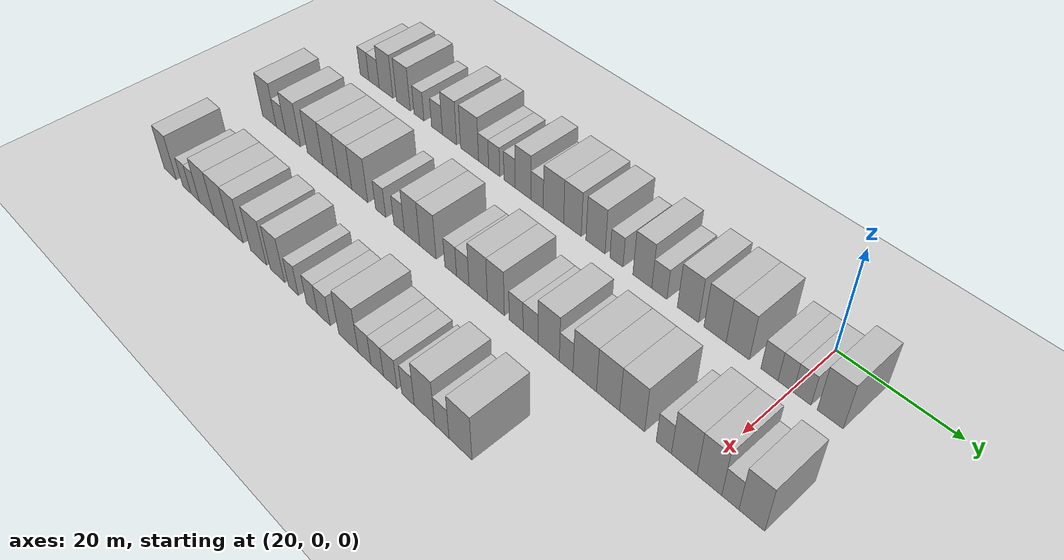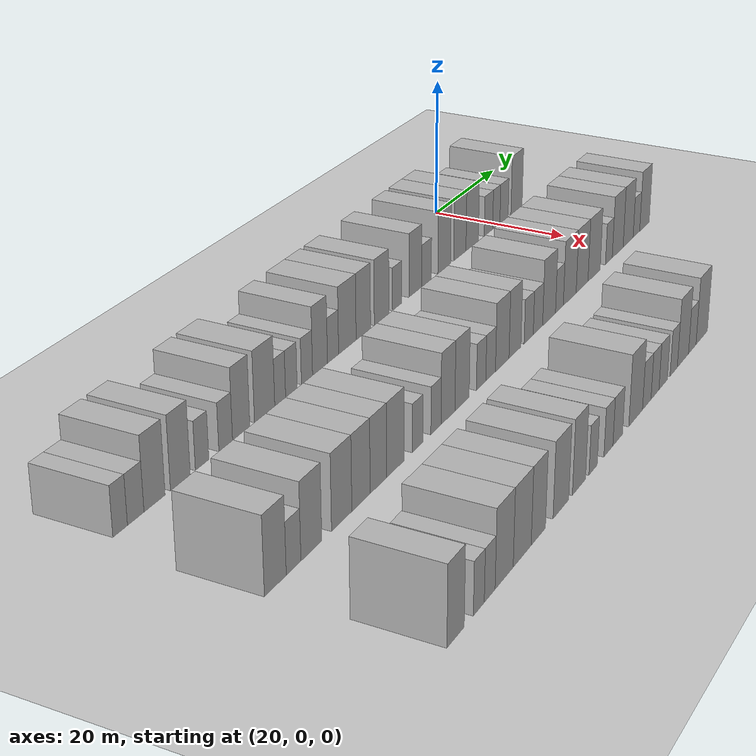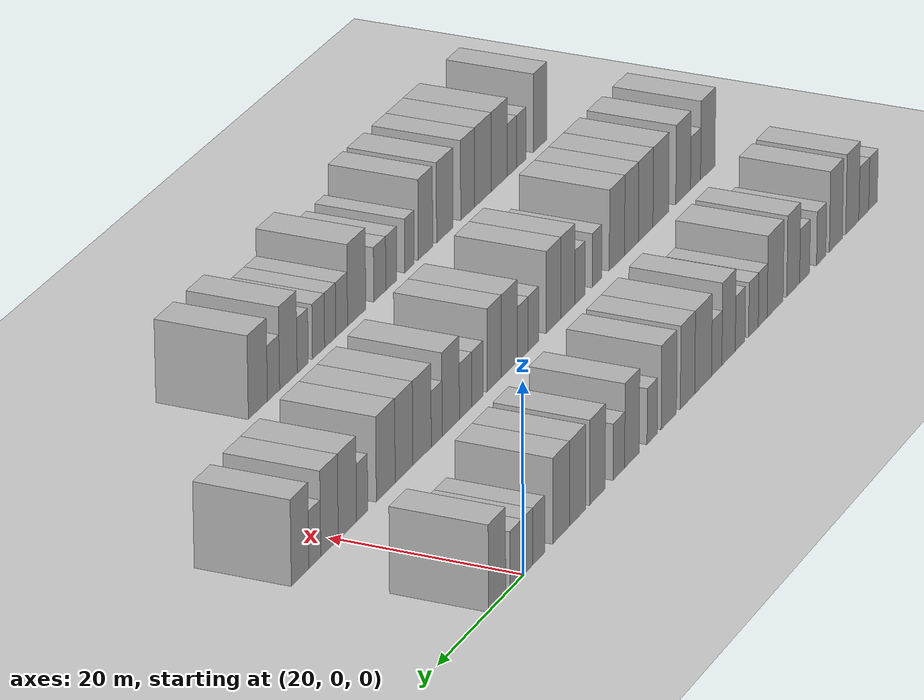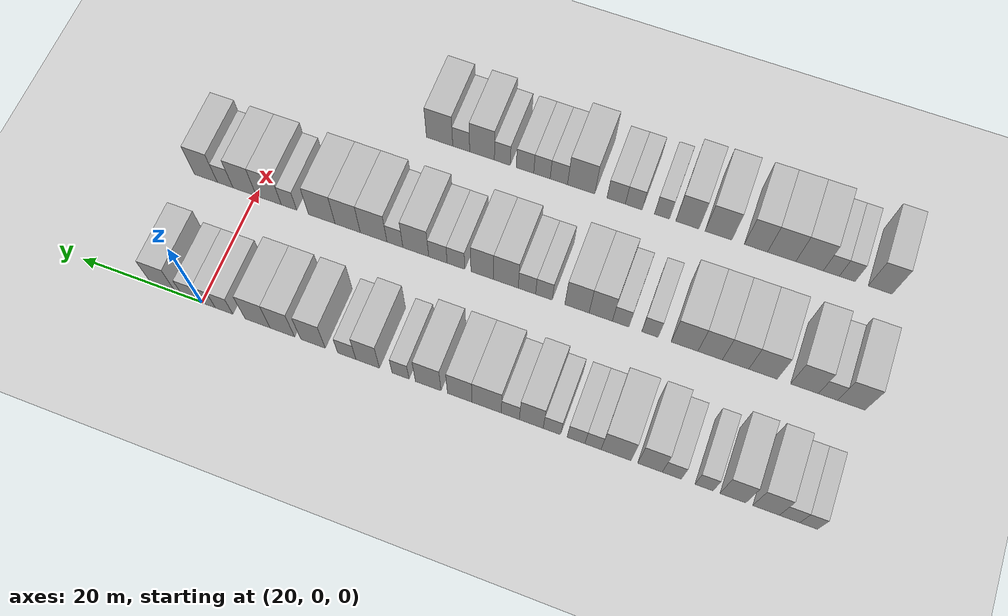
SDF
<sdf version="1.6">
 <world name="default">
  <include><name>ground_plane_1</name><uri>model://HANNAS_ground_plane</uri></include>
  <model name="building_67">
   <static>1</static>
   <pose>25.0000 -93.1399 0 0.000000 0.000000 0.000000</pose>
   <link name="link">
    <pose>0 0 3.00 0 0 0</pose>
    <collision name="collision"><geometry><box><size>10.0000 2.5217 6.0000</size></box></geometry></collision>
    <visual name="visual">
     <cast_shadows>0</cast_shadows>
     <geometry><box><size>10.0000 2.5217 6.0000</size></box></geometry>
     <material>
      <script>
       <uri>model://HANNAS_wall/materials/scripts</uri>
       <uri>model://HANNAS_wall/materials/textures</uri>
       <name>vrc/HANNAS_wall</name>
      </script>
     </material>
    </visual>
   </link>
  </model>
  <model name="building_68">
   <static>1</static>
   <pose>25.0000 -90.4197 0 0.000000 0.000000 0.000000</pose>
   <link name="link">
    <pose>0 0 3.00 0 0 0</pose>
    <collision name="collision"><geometry><box><size>10.0000 2.9186 6.0000</size></box></geometry></collision>
    <visual name="visual">
     <cast_shadows>0</cast_shadows>
     <geometry><box><size>10.0000 2.9186 6.0000</size></box></geometry>
     <material>
      <script>
       <uri>model://HANNAS_wall/materials/scripts</uri>
       <uri>model://HANNAS_wall/materials/textures</uri>
       <name>vrc/HANNAS_wall</name>
      </script>
     </material>
    </visual>
   </link>
  </model>
  <model name="building_69">
   <static>1</static>
   <pose>25.0000 -87.0418 0 0.000000 0.000000 0.000000</pose>
   <link name="link">
    <pose>0 0 4.50 0 0 0</pose>
    <collision name="collision"><geometry><box><size>10.0000 3.8372 9.0000</size></box></geometry></collision>
    <visual name="visual">
     <cast_shadows>0</cast_shadows>
     <geometry><box><size>10.0000 3.8372 9.0000</size></box></geometry>
     <material>
      <script>
       <uri>model://HANNAS_wall/materials/scripts</uri>
       <uri>model://HANNAS_wall/materials/textures</uri>
       <name>vrc/HANNAS_wall</name>
      </script>
     </material>
    </visual>
   </link>
  </model>
  <model name="building_70">
   <static>1</static>
   <pose>25.0000 -82.2463 0 0.000000 0.000000 0.000000</pose>
   <link name="link">
    <pose>0 0 4.50 0 0 0</pose>
    <collision name="collision"><geometry><box><size>10.0000 3.7538 9.0000</size></box></geometry></collision>
    <visual name="visual">
     <cast_shadows>0</cast_shadows>
     <geometry><box><size>10.0000 3.7538 9.0000</size></box></geometry>
     <material>
      <script>
       <uri>model://HANNAS_wall/materials/scripts</uri>
       <uri>model://HANNAS_wall/materials/textures</uri>
       <name>vrc/HANNAS_wall</name>
      </script>
     </material>
    </visual>
   </link>
  </model>
  <model name="building_71">
   <static>1</static>
   <pose>25.0000 -78.0394 0 0.000000 0.000000 0.000000</pose>
   <link name="link">
    <pose>0 0 3.00 0 0 0</pose>
    <collision name="collision"><geometry><box><size>10.0000 2.6600 6.0000</size></box></geometry></collision>
    <visual name="visual">
     <cast_shadows>0</cast_shadows>
     <geometry><box><size>10.0000 2.6600 6.0000</size></box></geometry>
     <material>
      <script>
       <uri>model://HANNAS_wall/materials/scripts</uri>
       <uri>model://HANNAS_wall/materials/textures</uri>
       <name>vrc/HANNAS_wall</name>
      </script>
     </material>
    </visual>
   </link>
  </model>
  <model name="building_72">
   <static>1</static>
   <pose>25.0000 -73.3021 0 0.000000 0.000000 0.000000</pose>
   <link name="link">
    <pose>0 0 3.00 0 0 0</pose>
    <collision name="collision"><geometry><box><size>10.0000 2.8146 6.0000</size></box></geometry></collision>
    <visual name="visual">
     <cast_shadows>0</cast_shadows>
     <geometry><box><size>10.0000 2.8146 6.0000</size></box></geometry>
     <material>
      <script>
       <uri>model://HANNAS_wall/materials/scripts</uri>
       <uri>model://HANNAS_wall/materials/textures</uri>
       <name>vrc/HANNAS_wall</name>
      </script>
     </material>
    </visual>
   </link>
  </model>
  <model name="building_73">
   <static>1</static>
   <pose>25.0000 -70.0774 0 0.000000 0.000000 0.000000</pose>
   <link name="link">
    <pose>0 0 4.50 0 0 0</pose>
    <collision name="collision"><geometry><box><size>10.0000 3.6347 9.0000</size></box></geometry></collision>
    <visual name="visual">
     <cast_shadows>0</cast_shadows>
     <geometry><box><size>10.0000 3.6347 9.0000</size></box></geometry>
     <material>
      <script>
       <uri>model://HANNAS_wall/materials/scripts</uri>
       <uri>model://HANNAS_wall/materials/textures</uri>
       <name>vrc/HANNAS_wall</name>
      </script>
     </material>
    </visual>
   </link>
  </model>
  <model name="building_74">
   <static>1</static>
   <pose>25.0000 -65.0323 0 0.000000 0.000000 0.000000</pose>
   <link name="link">
    <pose>0 0 4.50 0 0 0</pose>
    <collision name="collision"><geometry><box><size>10.0000 4.4555 9.0000</size></box></geometry></collision>
    <visual name="visual">
     <cast_shadows>0</cast_shadows>
     <geometry><box><size>10.0000 4.4555 9.0000</size></box></geometry>
     <material>
      <script>
       <uri>model://HANNAS_wall/materials/scripts</uri>
       <uri>model://HANNAS_wall/materials/textures</uri>
       <name>vrc/HANNAS_wall</name>
      </script>
     </material>
    </visual>
   </link>
  </model>
  <model name="building_75">
   <static>1</static>
   <pose>25.0000 -61.5827 0 0.000000 0.000000 0.000000</pose>
   <link name="link">
    <pose>0 0 3.00 0 0 0</pose>
    <collision name="collision"><geometry><box><size>10.0000 2.4436 6.0000</size></box></geometry></collision>
    <visual name="visual">
     <cast_shadows>0</cast_shadows>
     <geometry><box><size>10.0000 2.4436 6.0000</size></box></geometry>
     <material>
      <script>
       <uri>model://HANNAS_wall/materials/scripts</uri>
       <uri>model://HANNAS_wall/materials/textures</uri>
       <name>vrc/HANNAS_wall</name>
      </script>
     </material>
    </visual>
   </link>
  </model>
  <model name="building_76">
   <static>1</static>
   <pose>25.0000 -59.0315 0 0.000000 0.000000 0.000000</pose>
   <link name="link">
    <pose>0 0 3.00 0 0 0</pose>
    <collision name="collision"><geometry><box><size>10.0000 2.6588 6.0000</size></box></geometry></collision>
    <visual name="visual">
     <cast_shadows>0</cast_shadows>
     <geometry><box><size>10.0000 2.6588 6.0000</size></box></geometry>
     <material>
      <script>
       <uri>model://HANNAS_wall/materials/scripts</uri>
       <uri>model://HANNAS_wall/materials/textures</uri>
       <name>vrc/HANNAS_wall</name>
      </script>
     </material>
    </visual>
   </link>
  </model>
  <model name="building_77">
   <static>1</static>
   <pose>25.0000 -55.3832 0 0.000000 0.000000 0.000000</pose>
   <link name="link">
    <pose>0 0 3.00 0 0 0</pose>
    <collision name="collision"><geometry><box><size>10.0000 2.6379 6.0000</size></box></geometry></collision>
    <visual name="visual">
     <cast_shadows>0</cast_shadows>
     <geometry><box><size>10.0000 2.6379 6.0000</size></box></geometry>
     <material>
      <script>
       <uri>model://HANNAS_wall/materials/scripts</uri>
       <uri>model://HANNAS_wall/materials/textures</uri>
       <name>vrc/HANNAS_wall</name>
      </script>
     </material>
    </visual>
   </link>
  </model>
  <model name="building_78">
   <static>1</static>
   <pose>25.0000 -52.2498 0 0.000000 0.000000 0.000000</pose>
   <link name="link">
    <pose>0 0 4.50 0 0 0</pose>
    <collision name="collision"><geometry><box><size>10.0000 3.6288 9.0000</size></box></geometry></collision>
    <visual name="visual">
     <cast_shadows>0</cast_shadows>
     <geometry><box><size>10.0000 3.6288 9.0000</size></box></geometry>
     <material>
      <script>
       <uri>model://HANNAS_wall/materials/scripts</uri>
       <uri>model://HANNAS_wall/materials/textures</uri>
       <name>vrc/HANNAS_wall</name>
      </script>
     </material>
    </visual>
   </link>
  </model>
  <model name="building_79">
   <static>1</static>
   <pose>25.0000 -49.0519 0 0.000000 0.000000 0.000000</pose>
   <link name="link">
    <pose>0 0 3.00 0 0 0</pose>
    <collision name="collision"><geometry><box><size>10.0000 2.7669 6.0000</size></box></geometry></collision>
    <visual name="visual">
     <cast_shadows>0</cast_shadows>
     <geometry><box><size>10.0000 2.7669 6.0000</size></box></geometry>
     <material>
      <script>
       <uri>model://HANNAS_wall/materials/scripts</uri>
       <uri>model://HANNAS_wall/materials/textures</uri>
       <name>vrc/HANNAS_wall</name>
      </script>
     </material>
    </visual>
   </link>
  </model>
  <model name="building_80">
   <static>1</static>
   <pose>25.0000 -45.4250 0 0.000000 0.000000 0.000000</pose>
   <link name="link">
    <pose>0 0 4.50 0 0 0</pose>
    <collision name="collision"><geometry><box><size>10.0000 4.4869 9.0000</size></box></geometry></collision>
    <visual name="visual">
     <cast_shadows>0</cast_shadows>
     <geometry><box><size>10.0000 4.4869 9.0000</size></box></geometry>
     <material>
      <script>
       <uri>model://HANNAS_wall/materials/scripts</uri>
       <uri>model://HANNAS_wall/materials/textures</uri>
       <name>vrc/HANNAS_wall</name>
      </script>
     </material>
    </visual>
   </link>
  </model>
  <model name="building_81">
   <static>1</static>
   <pose>25.0000 -41.2766 0 0.000000 0.000000 0.000000</pose>
   <link name="link">
    <pose>0 0 4.50 0 0 0</pose>
    <collision name="collision"><geometry><box><size>10.0000 3.8098 9.0000</size></box></geometry></collision>
    <visual name="visual">
     <cast_shadows>0</cast_shadows>
     <geometry><box><size>10.0000 3.8098 9.0000</size></box></geometry>
     <material>
      <script>
       <uri>model://HANNAS_wall/materials/scripts</uri>
       <uri>model://HANNAS_wall/materials/textures</uri>
       <name>vrc/HANNAS_wall</name>
      </script>
     </material>
    </visual>
   </link>
  </model>
  <model name="building_82">
   <static>1</static>
   <pose>25.0000 -36.3739 0 0.000000 0.000000 0.000000</pose>
   <link name="link">
    <pose>0 0 4.50 0 0 0</pose>
    <collision name="collision"><geometry><box><size>10.0000 3.9956 9.0000</size></box></geometry></collision>
    <visual name="visual">
     <cast_shadows>0</cast_shadows>
     <geometry><box><size>10.0000 3.9956 9.0000</size></box></geometry>
     <material>
      <script>
       <uri>model://HANNAS_wall/materials/scripts</uri>
       <uri>model://HANNAS_wall/materials/textures</uri>
       <name>vrc/HANNAS_wall</name>
      </script>
     </material>
    </visual>
   </link>
  </model>
  <model name="building_83">
   <static>1</static>
   <pose>25.0000 -32.0469 0 0.000000 0.000000 0.000000</pose>
   <link name="link">
    <pose>0 0 3.00 0 0 0</pose>
    <collision name="collision"><geometry><box><size>10.0000 2.6585 6.0000</size></box></geometry></collision>
    <visual name="visual">
     <cast_shadows>0</cast_shadows>
     <geometry><box><size>10.0000 2.6585 6.0000</size></box></geometry>
     <material>
      <script>
       <uri>model://HANNAS_wall/materials/scripts</uri>
       <uri>model://HANNAS_wall/materials/textures</uri>
       <name>vrc/HANNAS_wall</name>
      </script>
     </material>
    </visual>
   </link>
  </model>
  <model name="building_84">
   <static>1</static>
   <pose>25.0000 -26.8616 0 0.000000 0.000000 0.000000</pose>
   <link name="link">
    <pose>0 0 4.50 0 0 0</pose>
    <collision name="collision"><geometry><box><size>10.0000 3.7120 9.0000</size></box></geometry></collision>
    <visual name="visual">
     <cast_shadows>0</cast_shadows>
     <geometry><box><size>10.0000 3.7120 9.0000</size></box></geometry>
     <material>
      <script>
       <uri>model://HANNAS_wall/materials/scripts</uri>
       <uri>model://HANNAS_wall/materials/textures</uri>
       <name>vrc/HANNAS_wall</name>
      </script>
     </material>
    </visual>
   </link>
  </model>
  <model name="building_85">
   <static>1</static>
   <pose>25.0000 -23.5448 0 0.000000 0.000000 0.000000</pose>
   <link name="link">
    <pose>0 0 3.00 0 0 0</pose>
    <collision name="collision"><geometry><box><size>10.0000 2.9215 6.0000</size></box></geometry></collision>
    <visual name="visual">
     <cast_shadows>0</cast_shadows>
     <geometry><box><size>10.0000 2.9215 6.0000</size></box></geometry>
     <material>
      <script>
       <uri>model://HANNAS_wall/materials/scripts</uri>
       <uri>model://HANNAS_wall/materials/textures</uri>
       <name>vrc/HANNAS_wall</name>
      </script>
     </material>
    </visual>
   </link>
  </model>
  <model name="building_86">
   <static>1</static>
   <pose>25.0000 -18.1138 0 0.000000 0.000000 0.000000</pose>
   <link name="link">
    <pose>0 0 4.50 0 0 0</pose>
    <collision name="collision"><geometry><box><size>10.0000 3.9405 9.0000</size></box></geometry></collision>
    <visual name="visual">
     <cast_shadows>0</cast_shadows>
     <geometry><box><size>10.0000 3.9405 9.0000</size></box></geometry>
     <material>
      <script>
       <uri>model://HANNAS_wall/materials/scripts</uri>
       <uri>model://HANNAS_wall/materials/textures</uri>
       <name>vrc/HANNAS_wall</name>
      </script>
     </material>
    </visual>
   </link>
  </model>
  <model name="building_87">
   <static>1</static>
   <pose>25.0000 -13.1599 0 0.000000 0.000000 0.000000</pose>
   <link name="link">
    <pose>0 0 4.50 0 0 0</pose>
    <collision name="collision"><geometry><box><size>10.0000 3.9674 9.0000</size></box></geometry></collision>
    <visual name="visual">
     <cast_shadows>0</cast_shadows>
     <geometry><box><size>10.0000 3.9674 9.0000</size></box></geometry>
     <material>
      <script>
       <uri>model://HANNAS_wall/materials/scripts</uri>
       <uri>model://HANNAS_wall/materials/textures</uri>
       <name>vrc/HANNAS_wall</name>
      </script>
     </material>
    </visual>
   </link>
  </model>
  <model name="building_88">
   <static>1</static>
   <pose>25.0000 -9.1341 0 0.000000 0.000000 0.000000</pose>
   <link name="link">
    <pose>0 0 4.50 0 0 0</pose>
    <collision name="collision"><geometry><box><size>10.0000 4.0842 9.0000</size></box></geometry></collision>
    <visual name="visual">
     <cast_shadows>0</cast_shadows>
     <geometry><box><size>10.0000 4.0842 9.0000</size></box></geometry>
     <material>
      <script>
       <uri>model://HANNAS_wall/materials/scripts</uri>
       <uri>model://HANNAS_wall/materials/textures</uri>
       <name>vrc/HANNAS_wall</name>
      </script>
     </material>
    </visual>
   </link>
  </model>
  <model name="building_89">
   <static>1</static>
   <pose>25.0000 -3.6507 0 0.000000 0.000000 0.000000</pose>
   <link name="link">
    <pose>0 0 3.00 0 0 0</pose>
    <collision name="collision"><geometry><box><size>10.0000 2.8826 6.0000</size></box></geometry></collision>
    <visual name="visual">
     <cast_shadows>0</cast_shadows>
     <geometry><box><size>10.0000 2.8826 6.0000</size></box></geometry>
     <material>
      <script>
       <uri>model://HANNAS_wall/materials/scripts</uri>
       <uri>model://HANNAS_wall/materials/textures</uri>
       <name>vrc/HANNAS_wall</name>
      </script>
     </material>
    </visual>
   </link>
  </model>
  <model name="building_90">
   <static>1</static>
   <pose>25.0000 -0.9474 0 0.000000 0.000000 0.000000</pose>
   <link name="link">
    <pose>0 0 3.00 0 0 0</pose>
    <collision name="collision"><geometry><box><size>10.0000 2.5239 6.0000</size></box></geometry></collision>
    <visual name="visual">
     <cast_shadows>0</cast_shadows>
     <geometry><box><size>10.0000 2.5239 6.0000</size></box></geometry>
     <material>
      <script>
       <uri>model://HANNAS_wall/materials/scripts</uri>
       <uri>model://HANNAS_wall/materials/textures</uri>
       <name>vrc/HANNAS_wall</name>
      </script>
     </material>
    </visual>
   </link>
  </model>
  <model name="building_91">
   <static>1</static>
   <pose>25.0000 1.7710 0 0.000000 0.000000 0.000000</pose>
   <link name="link">
    <pose>0 0 3.00 0 0 0</pose>
    <collision name="collision"><geometry><box><size>10.0000 2.9131 6.0000</size></box></geometry></collision>
    <visual name="visual">
     <cast_shadows>0</cast_shadows>
     <geometry><box><size>10.0000 2.9131 6.0000</size></box></geometry>
     <material>
      <script>
       <uri>model://HANNAS_wall/materials/scripts</uri>
       <uri>model://HANNAS_wall/materials/textures</uri>
       <name>vrc/HANNAS_wall</name>
      </script>
     </material>
    </visual>
   </link>
  </model>
  <model name="building_92">
   <static>1</static>
   <pose>25.0000 6.2676 0 0.000000 0.000000 0.000000</pose>
   <link name="link">
    <pose>0 0 4.50 0 0 0</pose>
    <collision name="collision"><geometry><box><size>10.0000 4.0800 9.0000</size></box></geometry></collision>
    <visual name="visual">
     <cast_shadows>0</cast_shadows>
     <geometry><box><size>10.0000 4.0800 9.0000</size></box></geometry>
     <material>
      <script>
       <uri>model://HANNAS_wall/materials/scripts</uri>
       <uri>model://HANNAS_wall/materials/textures</uri>
       <name>vrc/HANNAS_wall</name>
      </script>
     </material>
    </visual>
   </link>
  </model>
  <model name="building_230">
   <static>1</static>
   <pose>44.0000 -94.4397 0 0.000000 0.000000 0.000000</pose>
   <link name="link">
    <pose>0 0 4.50 0 0 0</pose>
    <collision name="collision"><geometry><box><size>10.0000 4.0801 9.0000</size></box></geometry></collision>
    <visual name="visual">
     <cast_shadows>0</cast_shadows>
     <geometry><box><size>10.0000 4.0801 9.0000</size></box></geometry>
     <material>
      <script>
       <uri>model://HANNAS_wall/materials/scripts</uri>
       <uri>model://HANNAS_wall/materials/textures</uri>
       <name>vrc/HANNAS_wall</name>
      </script>
     </material>
    </visual>
   </link>
  </model>
  <model name="building_231">
   <static>1</static>
   <pose>44.0000 -90.9858 0 0.000000 0.000000 0.000000</pose>
   <link name="link">
    <pose>0 0 3.00 0 0 0</pose>
    <collision name="collision"><geometry><box><size>10.0000 2.8278 6.0000</size></box></geometry></collision>
    <visual name="visual">
     <cast_shadows>0</cast_shadows>
     <geometry><box><size>10.0000 2.8278 6.0000</size></box></geometry>
     <material>
      <script>
       <uri>model://HANNAS_wall/materials/scripts</uri>
       <uri>model://HANNAS_wall/materials/textures</uri>
       <name>vrc/HANNAS_wall</name>
      </script>
     </material>
    </visual>
   </link>
  </model>
  <model name="building_232">
   <static>1</static>
   <pose>44.0000 -87.4988 0 0.000000 0.000000 0.000000</pose>
   <link name="link">
    <pose>0 0 4.50 0 0 0</pose>
    <collision name="collision"><geometry><box><size>10.0000 4.1462 9.0000</size></box></geometry></collision>
    <visual name="visual">
     <cast_shadows>0</cast_shadows>
     <geometry><box><size>10.0000 4.1462 9.0000</size></box></geometry>
     <material>
      <script>
       <uri>model://HANNAS_wall/materials/scripts</uri>
       <uri>model://HANNAS_wall/materials/textures</uri>
       <name>vrc/HANNAS_wall</name>
      </script>
     </material>
    </visual>
   </link>
  </model>
  <model name="building_233">
   <static>1</static>
   <pose>44.0000 -81.2805 0 0.000000 0.000000 0.000000</pose>
   <link name="link">
    <pose>0 0 4.50 0 0 0</pose>
    <collision name="collision"><geometry><box><size>10.0000 4.2903 9.0000</size></box></geometry></collision>
    <visual name="visual">
     <cast_shadows>0</cast_shadows>
     <geometry><box><size>10.0000 4.2903 9.0000</size></box></geometry>
     <material>
      <script>
       <uri>model://HANNAS_wall/materials/scripts</uri>
       <uri>model://HANNAS_wall/materials/textures</uri>
       <name>vrc/HANNAS_wall</name>
      </script>
     </material>
    </visual>
   </link>
  </model>
  <model name="building_234">
   <static>1</static>
   <pose>44.0000 -77.1309 0 0.000000 0.000000 0.000000</pose>
   <link name="link">
    <pose>0 0 4.50 0 0 0</pose>
    <collision name="collision"><geometry><box><size>10.0000 4.0091 9.0000</size></box></geometry></collision>
    <visual name="visual">
     <cast_shadows>0</cast_shadows>
     <geometry><box><size>10.0000 4.0091 9.0000</size></box></geometry>
     <material>
      <script>
       <uri>model://HANNAS_wall/materials/scripts</uri>
       <uri>model://HANNAS_wall/materials/textures</uri>
       <name>vrc/HANNAS_wall</name>
      </script>
     </material>
    </visual>
   </link>
  </model>
  <model name="building_235">
   <static>1</static>
   <pose>44.0000 -73.2643 0 0.000000 0.000000 0.000000</pose>
   <link name="link">
    <pose>0 0 4.50 0 0 0</pose>
    <collision name="collision"><geometry><box><size>10.0000 3.7241 9.0000</size></box></geometry></collision>
    <visual name="visual">
     <cast_shadows>0</cast_shadows>
     <geometry><box><size>10.0000 3.7241 9.0000</size></box></geometry>
     <material>
      <script>
       <uri>model://HANNAS_wall/materials/scripts</uri>
       <uri>model://HANNAS_wall/materials/textures</uri>
       <name>vrc/HANNAS_wall</name>
      </script>
     </material>
    </visual>
   </link>
  </model>
  <model name="building_236">
   <static>1</static>
   <pose>44.0000 -69.3434 0 0.000000 0.000000 0.000000</pose>
   <link name="link">
    <pose>0 0 4.50 0 0 0</pose>
    <collision name="collision"><geometry><box><size>10.0000 4.1177 9.0000</size></box></geometry></collision>
    <visual name="visual">
     <cast_shadows>0</cast_shadows>
     <geometry><box><size>10.0000 4.1177 9.0000</size></box></geometry>
     <material>
      <script>
       <uri>model://HANNAS_wall/materials/scripts</uri>
       <uri>model://HANNAS_wall/materials/textures</uri>
       <name>vrc/HANNAS_wall</name>
      </script>
     </material>
    </visual>
   </link>
  </model>
  <model name="building_237">
   <static>1</static>
   <pose>44.0000 -64.0171 0 0.000000 0.000000 0.000000</pose>
   <link name="link">
    <pose>0 0 3.00 0 0 0</pose>
    <collision name="collision"><geometry><box><size>10.0000 2.5350 6.0000</size></box></geometry></collision>
    <visual name="visual">
     <cast_shadows>0</cast_shadows>
     <geometry><box><size>10.0000 2.5350 6.0000</size></box></geometry>
     <material>
      <script>
       <uri>model://HANNAS_wall/materials/scripts</uri>
       <uri>model://HANNAS_wall/materials/textures</uri>
       <name>vrc/HANNAS_wall</name>
      </script>
     </material>
    </visual>
   </link>
  </model>
  <model name="building_238">
   <static>1</static>
   <pose>44.0000 -59.4573 0 0.000000 0.000000 0.000000</pose>
   <link name="link">
    <pose>0 0 3.00 0 0 0</pose>
    <collision name="collision"><geometry><box><size>10.0000 2.5846 6.0000</size></box></geometry></collision>
    <visual name="visual">
     <cast_shadows>0</cast_shadows>
     <geometry><box><size>10.0000 2.5846 6.0000</size></box></geometry>
     <material>
      <script>
       <uri>model://HANNAS_wall/materials/scripts</uri>
       <uri>model://HANNAS_wall/materials/textures</uri>
       <name>vrc/HANNAS_wall</name>
      </script>
     </material>
    </visual>
   </link>
  </model>
  <model name="building_239">
   <static>1</static>
   <pose>44.0000 -56.3441 0 0.000000 0.000000 0.000000</pose>
   <link name="link">
    <pose>0 0 4.50 0 0 0</pose>
    <collision name="collision"><geometry><box><size>10.0000 3.6419 9.0000</size></box></geometry></collision>
    <visual name="visual">
     <cast_shadows>0</cast_shadows>
     <geometry><box><size>10.0000 3.6419 9.0000</size></box></geometry>
     <material>
      <script>
       <uri>model://HANNAS_wall/materials/scripts</uri>
       <uri>model://HANNAS_wall/materials/textures</uri>
       <name>vrc/HANNAS_wall</name>
      </script>
     </material>
    </visual>
   </link>
  </model>
  <model name="building_240">
   <static>1</static>
   <pose>44.0000 -52.6106 0 0.000000 0.000000 0.000000</pose>
   <link name="link">
    <pose>0 0 4.50 0 0 0</pose>
    <collision name="collision"><geometry><box><size>10.0000 3.8251 9.0000</size></box></geometry></collision>
    <visual name="visual">
     <cast_shadows>0</cast_shadows>
     <geometry><box><size>10.0000 3.8251 9.0000</size></box></geometry>
     <material>
      <script>
       <uri>model://HANNAS_wall/materials/scripts</uri>
       <uri>model://HANNAS_wall/materials/textures</uri>
       <name>vrc/HANNAS_wall</name>
      </script>
     </material>
    </visual>
   </link>
  </model>
  <model name="building_241">
   <static>1</static>
   <pose>44.0000 -47.3762 0 0.000000 0.000000 0.000000</pose>
   <link name="link">
    <pose>0 0 3.00 0 0 0</pose>
    <collision name="collision"><geometry><box><size>10.0000 2.6438 6.0000</size></box></geometry></collision>
    <visual name="visual">
     <cast_shadows>0</cast_shadows>
     <geometry><box><size>10.0000 2.6438 6.0000</size></box></geometry>
     <material>
      <script>
       <uri>model://HANNAS_wall/materials/scripts</uri>
       <uri>model://HANNAS_wall/materials/textures</uri>
       <name>vrc/HANNAS_wall</name>
      </script>
     </material>
    </visual>
   </link>
  </model>
  <model name="building_242">
   <static>1</static>
   <pose>44.0000 -44.6667 0 0.000000 0.000000 0.000000</pose>
   <link name="link">
    <pose>0 0 3.00 0 0 0</pose>
    <collision name="collision"><geometry><box><size>10.0000 2.7752 6.0000</size></box></geometry></collision>
    <visual name="visual">
     <cast_shadows>0</cast_shadows>
     <geometry><box><size>10.0000 2.7752 6.0000</size></box></geometry>
     <material>
      <script>
       <uri>model://HANNAS_wall/materials/scripts</uri>
       <uri>model://HANNAS_wall/materials/textures</uri>
       <name>vrc/HANNAS_wall</name>
      </script>
     </material>
    </visual>
   </link>
  </model>
  <model name="building_243">
   <static>1</static>
   <pose>44.0000 -41.2909 0 0.000000 0.000000 0.000000</pose>
   <link name="link">
    <pose>0 0 4.50 0 0 0</pose>
    <collision name="collision"><geometry><box><size>10.0000 3.9764 9.0000</size></box></geometry></collision>
    <visual name="visual">
     <cast_shadows>0</cast_shadows>
     <geometry><box><size>10.0000 3.9764 9.0000</size></box></geometry>
     <material>
      <script>
       <uri>model://HANNAS_wall/materials/scripts</uri>
       <uri>model://HANNAS_wall/materials/textures</uri>
       <name>vrc/HANNAS_wall</name>
      </script>
     </material>
    </visual>
   </link>
  </model>
  <model name="building_244">
   <static>1</static>
   <pose>44.0000 -37.4966 0 0.000000 0.000000 0.000000</pose>
   <link name="link">
    <pose>0 0 4.50 0 0 0</pose>
    <collision name="collision"><geometry><box><size>10.0000 3.6124 9.0000</size></box></geometry></collision>
    <visual name="visual">
     <cast_shadows>0</cast_shadows>
     <geometry><box><size>10.0000 3.6124 9.0000</size></box></geometry>
     <material>
      <script>
       <uri>model://HANNAS_wall/materials/scripts</uri>
       <uri>model://HANNAS_wall/materials/textures</uri>
       <name>vrc/HANNAS_wall</name>
      </script>
     </material>
    </visual>
   </link>
  </model>
  <model name="building_245">
   <static>1</static>
   <pose>44.0000 -33.2606 0 0.000000 0.000000 0.000000</pose>
   <link name="link">
    <pose>0 0 3.00 0 0 0</pose>
    <collision name="collision"><geometry><box><size>10.0000 2.8596 6.0000</size></box></geometry></collision>
    <visual name="visual">
     <cast_shadows>0</cast_shadows>
     <geometry><box><size>10.0000 2.8596 6.0000</size></box></geometry>
     <material>
      <script>
       <uri>model://HANNAS_wall/materials/scripts</uri>
       <uri>model://HANNAS_wall/materials/textures</uri>
       <name>vrc/HANNAS_wall</name>
      </script>
     </material>
    </visual>
   </link>
  </model>
  <model name="building_246">
   <static>1</static>
   <pose>44.0000 -30.3310 0 0.000000 0.000000 0.000000</pose>
   <link name="link">
    <pose>0 0 3.00 0 0 0</pose>
    <collision name="collision"><geometry><box><size>10.0000 2.9995 6.0000</size></box></geometry></collision>
    <visual name="visual">
     <cast_shadows>0</cast_shadows>
     <geometry><box><size>10.0000 2.9995 6.0000</size></box></geometry>
     <material>
      <script>
       <uri>model://HANNAS_wall/materials/scripts</uri>
       <uri>model://HANNAS_wall/materials/textures</uri>
       <name>vrc/HANNAS_wall</name>
      </script>
     </material>
    </visual>
   </link>
  </model>
  <model name="building_247">
   <static>1</static>
   <pose>44.0000 -26.7188 0 0.000000 0.000000 0.000000</pose>
   <link name="link">
    <pose>0 0 4.50 0 0 0</pose>
    <collision name="collision"><geometry><box><size>10.0000 4.2251 9.0000</size></box></geometry></collision>
    <visual name="visual">
     <cast_shadows>0</cast_shadows>
     <geometry><box><size>10.0000 4.2251 9.0000</size></box></geometry>
     <material>
      <script>
       <uri>model://HANNAS_wall/materials/scripts</uri>
       <uri>model://HANNAS_wall/materials/textures</uri>
       <name>vrc/HANNAS_wall</name>
      </script>
     </material>
    </visual>
   </link>
  </model>
  <model name="building_248">
   <static>1</static>
   <pose>44.0000 -23.2904 0 0.000000 0.000000 0.000000</pose>
   <link name="link">
    <pose>0 0 3.00 0 0 0</pose>
    <collision name="collision"><geometry><box><size>10.0000 2.6316 6.0000</size></box></geometry></collision>
    <visual name="visual">
     <cast_shadows>0</cast_shadows>
     <geometry><box><size>10.0000 2.6316 6.0000</size></box></geometry>
     <material>
      <script>
       <uri>model://HANNAS_wall/materials/scripts</uri>
       <uri>model://HANNAS_wall/materials/textures</uri>
       <name>vrc/HANNAS_wall</name>
      </script>
     </material>
    </visual>
   </link>
  </model>
  <model name="building_249">
   <static>1</static>
   <pose>44.0000 -19.7622 0 0.000000 0.000000 0.000000</pose>
   <link name="link">
    <pose>0 0 4.50 0 0 0</pose>
    <collision name="collision"><geometry><box><size>10.0000 4.4248 9.0000</size></box></geometry></collision>
    <visual name="visual">
     <cast_shadows>0</cast_shadows>
     <geometry><box><size>10.0000 4.4248 9.0000</size></box></geometry>
     <material>
      <script>
       <uri>model://HANNAS_wall/materials/scripts</uri>
       <uri>model://HANNAS_wall/materials/textures</uri>
       <name>vrc/HANNAS_wall</name>
      </script>
     </material>
    </visual>
   </link>
  </model>
  <model name="building_250">
   <static>1</static>
   <pose>44.0000 -15.4418 0 0.000000 0.000000 0.000000</pose>
   <link name="link">
    <pose>0 0 4.50 0 0 0</pose>
    <collision name="collision"><geometry><box><size>10.0000 4.2159 9.0000</size></box></geometry></collision>
    <visual name="visual">
     <cast_shadows>0</cast_shadows>
     <geometry><box><size>10.0000 4.2159 9.0000</size></box></geometry>
     <material>
      <script>
       <uri>model://HANNAS_wall/materials/scripts</uri>
       <uri>model://HANNAS_wall/materials/textures</uri>
       <name>vrc/HANNAS_wall</name>
      </script>
     </material>
    </visual>
   </link>
  </model>
  <model name="building_251">
   <static>1</static>
   <pose>44.0000 -11.1108 0 0.000000 0.000000 0.000000</pose>
   <link name="link">
    <pose>0 0 4.50 0 0 0</pose>
    <collision name="collision"><geometry><box><size>10.0000 4.4461 9.0000</size></box></geometry></collision>
    <visual name="visual">
     <cast_shadows>0</cast_shadows>
     <geometry><box><size>10.0000 4.4461 9.0000</size></box></geometry>
     <material>
      <script>
       <uri>model://HANNAS_wall/materials/scripts</uri>
       <uri>model://HANNAS_wall/materials/textures</uri>
       <name>vrc/HANNAS_wall</name>
      </script>
     </material>
    </visual>
   </link>
  </model>
  <model name="building_252">
   <static>1</static>
   <pose>44.0000 -5.5896 0 0.000000 0.000000 0.000000</pose>
   <link name="link">
    <pose>0 0 3.00 0 0 0</pose>
    <collision name="collision"><geometry><box><size>10.0000 2.5964 6.0000</size></box></geometry></collision>
    <visual name="visual">
     <cast_shadows>0</cast_shadows>
     <geometry><box><size>10.0000 2.5964 6.0000</size></box></geometry>
     <material>
      <script>
       <uri>model://HANNAS_wall/materials/scripts</uri>
       <uri>model://HANNAS_wall/materials/textures</uri>
       <name>vrc/HANNAS_wall</name>
      </script>
     </material>
    </visual>
   </link>
  </model>
  <model name="building_253">
   <static>1</static>
   <pose>44.0000 -2.1732 0 0.000000 0.000000 0.000000</pose>
   <link name="link">
    <pose>0 0 4.50 0 0 0</pose>
    <collision name="collision"><geometry><box><size>10.0000 4.2363 9.0000</size></box></geometry></collision>
    <visual name="visual">
     <cast_shadows>0</cast_shadows>
     <geometry><box><size>10.0000 4.2363 9.0000</size></box></geometry>
     <material>
      <script>
       <uri>model://HANNAS_wall/materials/scripts</uri>
       <uri>model://HANNAS_wall/materials/textures</uri>
       <name>vrc/HANNAS_wall</name>
      </script>
     </material>
    </visual>
   </link>
  </model>
  <model name="building_254">
   <static>1</static>
   <pose>44.0000 1.9470 0 0.000000 0.000000 0.000000</pose>
   <link name="link">
    <pose>0 0 4.50 0 0 0</pose>
    <collision name="collision"><geometry><box><size>10.0000 4.0041 9.0000</size></box></geometry></collision>
    <visual name="visual">
     <cast_shadows>0</cast_shadows>
     <geometry><box><size>10.0000 4.0041 9.0000</size></box></geometry>
     <material>
      <script>
       <uri>model://HANNAS_wall/materials/scripts</uri>
       <uri>model://HANNAS_wall/materials/textures</uri>
       <name>vrc/HANNAS_wall</name>
      </script>
     </material>
    </visual>
   </link>
  </model>
  <model name="building_255">
   <static>1</static>
   <pose>44.0000 5.2903 0 0.000000 0.000000 0.000000</pose>
   <link name="link">
    <pose>0 0 3.00 0 0 0</pose>
    <collision name="collision"><geometry><box><size>10.0000 2.6825 6.0000</size></box></geometry></collision>
    <visual name="visual">
     <cast_shadows>0</cast_shadows>
     <geometry><box><size>10.0000 2.6825 6.0000</size></box></geometry>
     <material>
      <script>
       <uri>model://HANNAS_wall/materials/scripts</uri>
       <uri>model://HANNAS_wall/materials/textures</uri>
       <name>vrc/HANNAS_wall</name>
      </script>
     </material>
    </visual>
   </link>
  </model>
  <model name="building_256">
   <static>1</static>
   <pose>44.0000 8.6175 0 0.000000 0.000000 0.000000</pose>
   <link name="link">
    <pose>0 0 4.50 0 0 0</pose>
    <collision name="collision"><geometry><box><size>10.0000 3.9719 9.0000</size></box></geometry></collision>
    <visual name="visual">
     <cast_shadows>0</cast_shadows>
     <geometry><box><size>10.0000 3.9719 9.0000</size></box></geometry>
     <material>
      <script>
       <uri>model://HANNAS_wall/materials/scripts</uri>
       <uri>model://HANNAS_wall/materials/textures</uri>
       <name>vrc/HANNAS_wall</name>
      </script>
     </material>
    </visual>
   </link>
  </model>
  <model name="building_413">
   <static>1</static>
   <pose>63.0000 -94.1561 0 0.000000 0.000000 0.000000</pose>
   <link name="link">
    <pose>0 0 4.50 0 0 0</pose>
    <collision name="collision"><geometry><box><size>10.0000 3.6726 9.0000</size></box></geometry></collision>
    <visual name="visual">
     <cast_shadows>0</cast_shadows>
     <geometry><box><size>10.0000 3.6726 9.0000</size></box></geometry>
     <material>
      <script>
       <uri>model://HANNAS_wall/materials/scripts</uri>
       <uri>model://HANNAS_wall/materials/textures</uri>
       <name>vrc/HANNAS_wall</name>
      </script>
     </material>
    </visual>
   </link>
  </model>
  <model name="building_414">
   <static>1</static>
   <pose>63.0000 -89.0990 0 0.000000 0.000000 0.000000</pose>
   <link name="link">
    <pose>0 0 3.00 0 0 0</pose>
    <collision name="collision"><geometry><box><size>10.0000 2.4415 6.0000</size></box></geometry></collision>
    <visual name="visual">
     <cast_shadows>0</cast_shadows>
     <geometry><box><size>10.0000 2.4415 6.0000</size></box></geometry>
     <material>
      <script>
       <uri>model://HANNAS_wall/materials/scripts</uri>
       <uri>model://HANNAS_wall/materials/textures</uri>
       <name>vrc/HANNAS_wall</name>
      </script>
     </material>
    </visual>
   </link>
  </model>
  <model name="building_415">
   <static>1</static>
   <pose>63.0000 -86.6405 0 0.000000 0.000000 0.000000</pose>
   <link name="link">
    <pose>0 0 3.00 0 0 0</pose>
    <collision name="collision"><geometry><box><size>10.0000 2.4756 6.0000</size></box></geometry></collision>
    <visual name="visual">
     <cast_shadows>0</cast_shadows>
     <geometry><box><size>10.0000 2.4756 6.0000</size></box></geometry>
     <material>
      <script>
       <uri>model://HANNAS_wall/materials/scripts</uri>
       <uri>model://HANNAS_wall/materials/textures</uri>
       <name>vrc/HANNAS_wall</name>
      </script>
     </material>
    </visual>
   </link>
  </model>
  <model name="building_416">
   <static>1</static>
   <pose>63.0000 -83.2626 0 0.000000 0.000000 0.000000</pose>
   <link name="link">
    <pose>0 0 4.50 0 0 0</pose>
    <collision name="collision"><geometry><box><size>10.0000 4.2802 9.0000</size></box></geometry></collision>
    <visual name="visual">
     <cast_shadows>0</cast_shadows>
     <geometry><box><size>10.0000 4.2802 9.0000</size></box></geometry>
     <material>
      <script>
       <uri>model://HANNAS_wall/materials/scripts</uri>
       <uri>model://HANNAS_wall/materials/textures</uri>
       <name>vrc/HANNAS_wall</name>
      </script>
     </material>
    </visual>
   </link>
  </model>
  <model name="building_417">
   <static>1</static>
   <pose>63.0000 -78.9058 0 0.000000 0.000000 0.000000</pose>
   <link name="link">
    <pose>0 0 4.50 0 0 0</pose>
    <collision name="collision"><geometry><box><size>10.0000 4.4334 9.0000</size></box></geometry></collision>
    <visual name="visual">
     <cast_shadows>0</cast_shadows>
     <geometry><box><size>10.0000 4.4334 9.0000</size></box></geometry>
     <material>
      <script>
       <uri>model://HANNAS_wall/materials/scripts</uri>
       <uri>model://HANNAS_wall/materials/textures</uri>
       <name>vrc/HANNAS_wall</name>
      </script>
     </material>
    </visual>
   </link>
  </model>
  <model name="building_418">
   <static>1</static>
   <pose>63.0000 -74.8684 0 0.000000 0.000000 0.000000</pose>
   <link name="link">
    <pose>0 0 4.50 0 0 0</pose>
    <collision name="collision"><geometry><box><size>10.0000 3.6415 9.0000</size></box></geometry></collision>
    <visual name="visual">
     <cast_shadows>0</cast_shadows>
     <geometry><box><size>10.0000 3.6415 9.0000</size></box></geometry>
     <material>
      <script>
       <uri>model://HANNAS_wall/materials/scripts</uri>
       <uri>model://HANNAS_wall/materials/textures</uri>
       <name>vrc/HANNAS_wall</name>
      </script>
     </material>
    </visual>
   </link>
  </model>
  <model name="building_419">
   <static>1</static>
   <pose>63.0000 -68.9253 0 0.000000 0.000000 0.000000</pose>
   <link name="link">
    <pose>0 0 4.50 0 0 0</pose>
    <collision name="collision"><geometry><box><size>10.0000 4.2446 9.0000</size></box></geometry></collision>
    <visual name="visual">
     <cast_shadows>0</cast_shadows>
     <geometry><box><size>10.0000 4.2446 9.0000</size></box></geometry>
     <material>
      <script>
       <uri>model://HANNAS_wall/materials/scripts</uri>
       <uri>model://HANNAS_wall/materials/textures</uri>
       <name>vrc/HANNAS_wall</name>
      </script>
     </material>
    </visual>
   </link>
  </model>
  <model name="building_420">
   <static>1</static>
   <pose>63.0000 -63.9522 0 0.000000 0.000000 0.000000</pose>
   <link name="link">
    <pose>0 0 4.50 0 0 0</pose>
    <collision name="collision"><geometry><box><size>10.0000 3.7017 9.0000</size></box></geometry></collision>
    <visual name="visual">
     <cast_shadows>0</cast_shadows>
     <geometry><box><size>10.0000 3.7017 9.0000</size></box></geometry>
     <material>
      <script>
       <uri>model://HANNAS_wall/materials/scripts</uri>
       <uri>model://HANNAS_wall/materials/textures</uri>
       <name>vrc/HANNAS_wall</name>
      </script>
     </material>
    </visual>
   </link>
  </model>
  <model name="building_421">
   <static>1</static>
   <pose>63.0000 -59.8925 0 0.000000 0.000000 0.000000</pose>
   <link name="link">
    <pose>0 0 3.00 0 0 0</pose>
    <collision name="collision"><geometry><box><size>10.0000 2.4177 6.0000</size></box></geometry></collision>
    <visual name="visual">
     <cast_shadows>0</cast_shadows>
     <geometry><box><size>10.0000 2.4177 6.0000</size></box></geometry>
     <material>
      <script>
       <uri>model://HANNAS_wall/materials/scripts</uri>
       <uri>model://HANNAS_wall/materials/textures</uri>
       <name>vrc/HANNAS_wall</name>
      </script>
     </material>
    </visual>
   </link>
  </model>
  <model name="building_422">
   <static>1</static>
   <pose>63.0000 -55.3165 0 0.000000 0.000000 0.000000</pose>
   <link name="link">
    <pose>0 0 3.00 0 0 0</pose>
    <collision name="collision"><geometry><box><size>10.0000 2.7343 6.0000</size></box></geometry></collision>
    <visual name="visual">
     <cast_shadows>0</cast_shadows>
     <geometry><box><size>10.0000 2.7343 6.0000</size></box></geometry>
     <material>
      <script>
       <uri>model://HANNAS_wall/materials/scripts</uri>
       <uri>model://HANNAS_wall/materials/textures</uri>
       <name>vrc/HANNAS_wall</name>
      </script>
     </material>
    </visual>
   </link>
  </model>
  <model name="building_423">
   <static>1</static>
   <pose>63.0000 -52.4522 0 0.000000 0.000000 0.000000</pose>
   <link name="link">
    <pose>0 0 3.00 0 0 0</pose>
    <collision name="collision"><geometry><box><size>10.0000 2.9945 6.0000</size></box></geometry></collision>
    <visual name="visual">
     <cast_shadows>0</cast_shadows>
     <geometry><box><size>10.0000 2.9945 6.0000</size></box></geometry>
     <material>
      <script>
       <uri>model://HANNAS_wall/materials/scripts</uri>
       <uri>model://HANNAS_wall/materials/textures</uri>
       <name>vrc/HANNAS_wall</name>
      </script>
     </material>
    </visual>
   </link>
  </model>
  <model name="building_424">
   <static>1</static>
   <pose>63.0000 -46.7178 0 0.000000 0.000000 0.000000</pose>
   <link name="link">
    <pose>0 0 4.50 0 0 0</pose>
    <collision name="collision"><geometry><box><size>10.0000 4.4743 9.0000</size></box></geometry></collision>
    <visual name="visual">
     <cast_shadows>0</cast_shadows>
     <geometry><box><size>10.0000 4.4743 9.0000</size></box></geometry>
     <material>
      <script>
       <uri>model://HANNAS_wall/materials/scripts</uri>
       <uri>model://HANNAS_wall/materials/textures</uri>
       <name>vrc/HANNAS_wall</name>
      </script>
     </material>
    </visual>
   </link>
  </model>
  <model name="building_425">
   <static>1</static>
   <pose>63.0000 -43.0467 0 0.000000 0.000000 0.000000</pose>
   <link name="link">
    <pose>0 0 3.00 0 0 0</pose>
    <collision name="collision"><geometry><box><size>10.0000 2.8677 6.0000</size></box></geometry></collision>
    <visual name="visual">
     <cast_shadows>0</cast_shadows>
     <geometry><box><size>10.0000 2.8677 6.0000</size></box></geometry>
     <material>
      <script>
       <uri>model://HANNAS_wall/materials/scripts</uri>
       <uri>model://HANNAS_wall/materials/textures</uri>
       <name>vrc/HANNAS_wall</name>
      </script>
     </material>
    </visual>
   </link>
  </model>
  <model name="building_426">
   <static>1</static>
   <pose>63.0000 -40.2476 0 0.000000 0.000000 0.000000</pose>
   <link name="link">
    <pose>0 0 3.00 0 0 0</pose>
    <collision name="collision"><geometry><box><size>10.0000 2.7305 6.0000</size></box></geometry></collision>
    <visual name="visual">
     <cast_shadows>0</cast_shadows>
     <geometry><box><size>10.0000 2.7305 6.0000</size></box></geometry>
     <material>
      <script>
       <uri>model://HANNAS_wall/materials/scripts</uri>
       <uri>model://HANNAS_wall/materials/textures</uri>
       <name>vrc/HANNAS_wall</name>
      </script>
     </material>
    </visual>
   </link>
  </model>
  <model name="building_427">
   <static>1</static>
   <pose>63.0000 -37.4227 0 0.000000 0.000000 0.000000</pose>
   <link name="link">
    <pose>0 0 3.00 0 0 0</pose>
    <collision name="collision"><geometry><box><size>10.0000 2.9193 6.0000</size></box></geometry></collision>
    <visual name="visual">
     <cast_shadows>0</cast_shadows>
     <geometry><box><size>10.0000 2.9193 6.0000</size></box></geometry>
     <material>
      <script>
       <uri>model://HANNAS_wall/materials/scripts</uri>
       <uri>model://HANNAS_wall/materials/textures</uri>
       <name>vrc/HANNAS_wall</name>
      </script>
     </material>
    </visual>
   </link>
  </model>
  <model name="building_428">
   <static>1</static>
   <pose>63.0000 -33.6394 0 0.000000 0.000000 0.000000</pose>
   <link name="link">
    <pose>0 0 3.00 0 0 0</pose>
    <collision name="collision"><geometry><box><size>10.0000 2.6472 6.0000</size></box></geometry></collision>
    <visual name="visual">
     <cast_shadows>0</cast_shadows>
     <geometry><box><size>10.0000 2.6472 6.0000</size></box></geometry>
     <material>
      <script>
       <uri>model://HANNAS_wall/materials/scripts</uri>
       <uri>model://HANNAS_wall/materials/textures</uri>
       <name>vrc/HANNAS_wall</name>
      </script>
     </material>
    </visual>
   </link>
  </model>
  <model name="building_429">
   <static>1</static>
   <pose>63.0000 -30.2366 0 0.000000 0.000000 0.000000</pose>
   <link name="link">
    <pose>0 0 4.50 0 0 0</pose>
    <collision name="collision"><geometry><box><size>10.0000 4.1584 9.0000</size></box></geometry></collision>
    <visual name="visual">
     <cast_shadows>0</cast_shadows>
     <geometry><box><size>10.0000 4.1584 9.0000</size></box></geometry>
     <material>
      <script>
       <uri>model://HANNAS_wall/materials/scripts</uri>
       <uri>model://HANNAS_wall/materials/textures</uri>
       <name>vrc/HANNAS_wall</name>
      </script>
     </material>
    </visual>
   </link>
  </model>
  <model name="building_430">
   <static>1</static>
   <pose>63.0000 -26.7255 0 0.000000 0.000000 0.000000</pose>
   <link name="link">
    <pose>0 0 3.00 0 0 0</pose>
    <collision name="collision"><geometry><box><size>10.0000 2.8638 6.0000</size></box></geometry></collision>
    <visual name="visual">
     <cast_shadows>0</cast_shadows>
     <geometry><box><size>10.0000 2.8638 6.0000</size></box></geometry>
     <material>
      <script>
       <uri>model://HANNAS_wall/materials/scripts</uri>
       <uri>model://HANNAS_wall/materials/textures</uri>
       <name>vrc/HANNAS_wall</name>
      </script>
     </material>
    </visual>
   </link>
  </model>
  <model name="building_431">
   <static>1</static>
   <pose>63.0000 -23.0650 0 0.000000 0.000000 0.000000</pose>
   <link name="link">
    <pose>0 0 4.50 0 0 0</pose>
    <collision name="collision"><geometry><box><size>10.0000 4.4572 9.0000</size></box></geometry></collision>
    <visual name="visual">
     <cast_shadows>0</cast_shadows>
     <geometry><box><size>10.0000 4.4572 9.0000</size></box></geometry>
     <material>
      <script>
       <uri>model://HANNAS_wall/materials/scripts</uri>
       <uri>model://HANNAS_wall/materials/textures</uri>
       <name>vrc/HANNAS_wall</name>
      </script>
     </material>
    </visual>
   </link>
  </model>
 </world>
</sdf>
